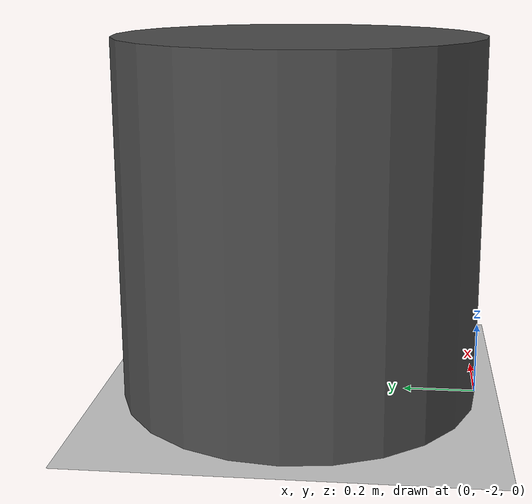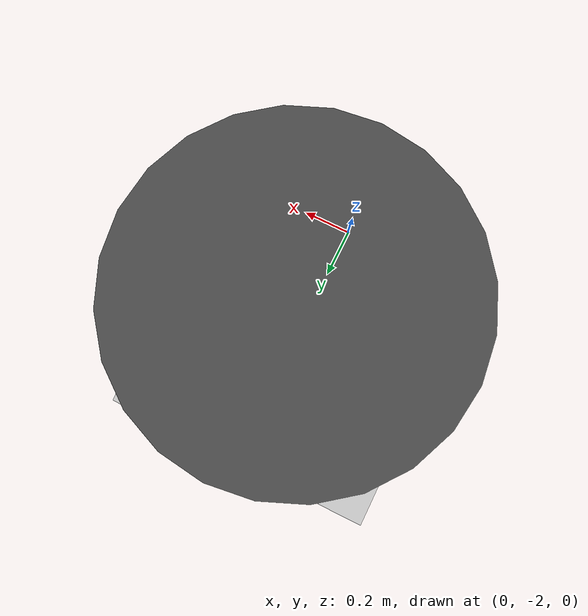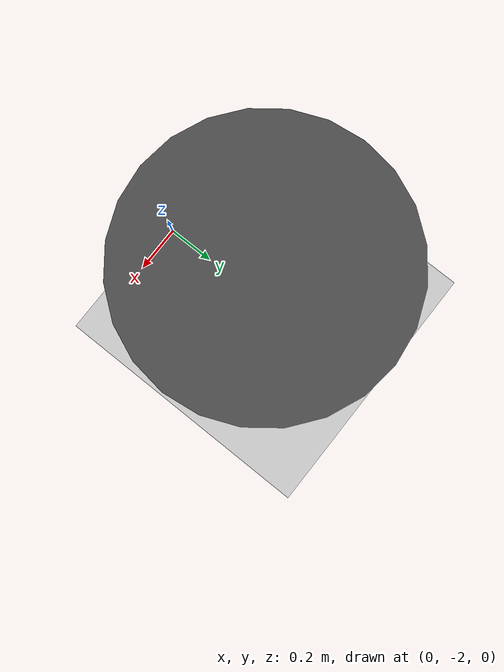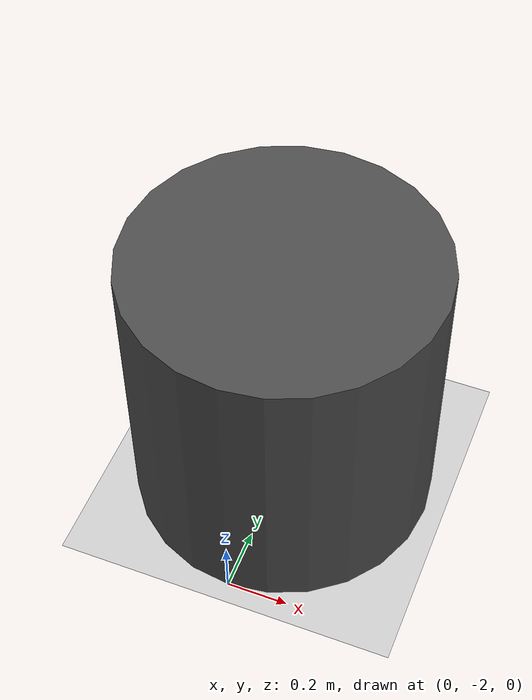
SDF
<?xml version="1.0" ?>
<sdf version="1.6">
  <world name="empty">
    <physics name="1ms" type="ignored">
      <max_step_size>0.001</max_step_size>
      <real_time_factor>1.0</real_time_factor>
    </physics>
    <plugin
      filename="ignition-gazebo-physics-system"
      name="ignition::gazebo::systems::Physics">
    </plugin>
    <plugin
      filename="ignition-gazebo-user-commands-system"
      name="ignition::gazebo::systems::UserCommands">
    </plugin>
    <plugin
      filename="ignition-gazebo-scene-broadcaster-system"
      name="ignition::gazebo::systems::SceneBroadcaster">
    </plugin>
    <plugin
      filename="ignition-gazebo-contact-system"
      name="ignition::gazebo::systems::Contact">
    </plugin>

    <light type="directional" name="sun">
      <cast_shadows>true</cast_shadows>
      <pose>0 0 10 0 0 0</pose>
      <diffuse>0.8 0.8 0.8 1</diffuse>
      <specular>0.2 0.2 0.2 1</specular>
      <attenuation>
        <range>1000</range>
        <constant>0.9</constant>
        <linear>0.01</linear>
        <quadratic>0.001</quadratic>
      </attenuation>
      <direction>-0.5 0.1 -0.9</direction>
    </light>

    <!--insert hydra plugin-->

     <model name="cylinder">
      <pose>0 -1.5 0.5 0 0 0</pose>
      <link name="cylinder_link">
        <inertial>
          <inertia>
            <ixx>2</ixx>
            <ixy>0</ixy>
            <ixz>0</ixz>
            <iyy>2</iyy>
            <iyz>0</iyz>
            <izz>2</izz>
          </inertia>
          <mass>2.0</mass>
        </inertial>
        <collision name="cylinder_collision">
          <geometry>
            <cylinder>
              <radius>0.5</radius>
              <length>1.0</length>
            </cylinder>
          </geometry>
        </collision>

        <visual name="cylinder_visual">
          <geometry>
            <cylinder>
              <radius>0.5</radius>
              <length>1.0</length>
            </cylinder>
          </geometry>
          <material>
            <ambient>0.3 0.3 0.3 1</ambient>
            <diffuse>0.3 0.3 0.3 1</diffuse>
            <specular>0.3 0.3 0.3 1</specular>
          </material>
        </visual>
      </link>

     <plugin name="ignition::gazebo::systems::HydraDemoPlugin"
       filename="libHydraDemo">
      <pivot>0.04 0 0</pivot>
      <grab>0.12 0 0</grab>
     </plugin>

    </model>

    <model name="ground_plane">
      <static>true</static>
      <link name="link">
        <collision name="collision">
          <geometry>
            <plane>
              <normal>0 0 1</normal>
              <size>100 100</size>
            </plane>
          </geometry>
        </collision>
        <visual name="visual">
          <geometry>
            <plane>
              <normal>0 0 1</normal>
              <size>100 100</size>
            </plane>
          </geometry>
          <material>
            <ambient>0.8 0.8 0.8 1</ambient>
            <diffuse>0.8 0.8 0.8 1</diffuse>
            <specular>0.8 0.8 0.8 1</specular>
          </material>
        </visual>
      </link>
    </model>

  </world>
</sdf>
